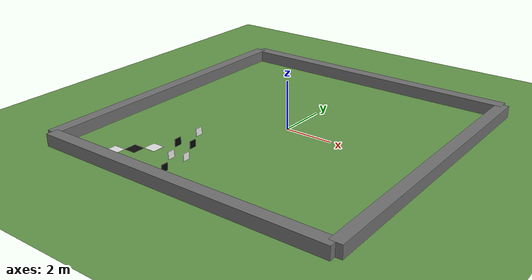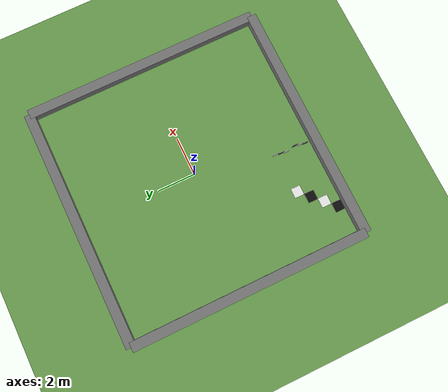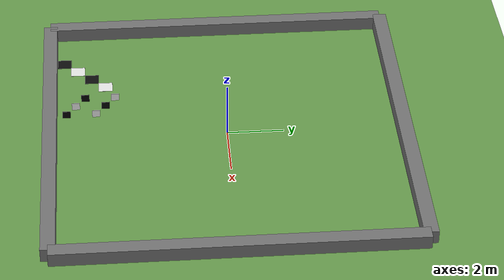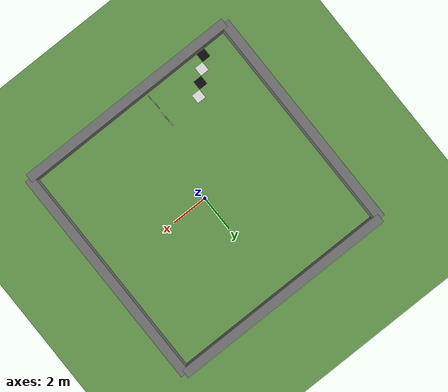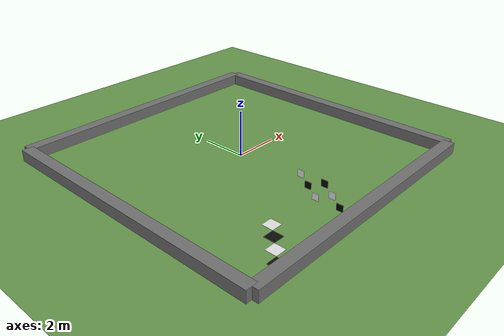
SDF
<?xml version="1.0" ?>
<sdf version="1.8">
  <world name="empty2">

    <physics name="1ms" type="ignored">
      <max_step_size>0.001</max_step_size>
      <real_time_factor>1.0</real_time_factor>
    </physics>

    <plugin filename="gz-sim-physics-system"
            name="gz::sim::systems::Physics"/>
    <plugin filename="gz-sim-user-commands-system"
            name="gz::sim::systems::UserCommands"/>
    <plugin filename="gz-sim-scene-broadcaster-system"
            name="gz::sim::systems::SceneBroadcaster"/>
    <plugin filename="gz-sim-sensors-system"
            name="gz::sim::systems::Sensors">
      <render_engine>ogre2</render_engine>
    </plugin>
    <plugin filename="gz-sim-imu-system"
            name="gz::sim::systems::Imu"/>

    <spherical_coordinates>
      <surface_model>EARTH_WGS84</surface_model>
      <latitude_deg>43.2557</latitude_deg>
      <longitude_deg>-79.8711</longitude_deg>
      <elevation>100.0</elevation>
      <heading_deg>0</heading_deg>
    </spherical_coordinates>

    <light name="amr_sweeper_sun" type="directional">
      <cast_shadows>true</cast_shadows>
      <pose>0 0 10 0 0 0</pose>
      <diffuse>1 1 1 1</diffuse>
      <specular>0.5 0.5 0.5 1</specular>
      <direction>-0.5 0.1 -0.9</direction>
    </light>

    <model name="ground_plane">
      <static>true</static>
      <link name="link">
        <collision name="collision">
          <geometry><plane><normal>0 0 1</normal><size>100 100</size></plane></geometry>
        </collision>
        <visual name="visual">
          <geometry><plane><normal>0 0 1</normal><size>100 100</size></plane></geometry>
          <material><ambient>0.4 0.6 0.3 1</ambient></material>
        </visual>
      </link>
    </model>

    <model name="vo_feature_targets">
      <static>true</static>
      <link name="pattern_link">
        <visual name="floor_dark_0">
          <pose>-4.5 -5.75 0.004 0 0 0</pose>
          <geometry><box><size>0.5 0.5 0.005</size></box></geometry>
          <material><ambient>0.05 0.05 0.05 1</ambient><diffuse>0.05 0.05 0.05 1</diffuse></material>
        </visual>
        <visual name="floor_light_0">
          <pose>-4.0 -5.25 0.004 0 0 0</pose>
          <geometry><box><size>0.5 0.5 0.005</size></box></geometry>
          <material><ambient>0.9 0.9 0.9 1</ambient><diffuse>0.9 0.9 0.9 1</diffuse></material>
        </visual>
        <visual name="floor_dark_1">
          <pose>-3.5 -4.75 0.004 0 0 0</pose>
          <geometry><box><size>0.5 0.5 0.005</size></box></geometry>
          <material><ambient>0.05 0.05 0.05 1</ambient><diffuse>0.05 0.05 0.05 1</diffuse></material>
        </visual>
        <visual name="floor_light_1">
          <pose>-3.0 -4.25 0.004 0 0 0</pose>
          <geometry><box><size>0.5 0.5 0.005</size></box></geometry>
          <material><ambient>0.9 0.9 0.9 1</ambient><diffuse>0.9 0.9 0.9 1</diffuse></material>
        </visual>
        <visual name="panel_00">
          <pose>-1.0 -5.65 0.35 0 0 0</pose>
          <geometry><box><size>0.02 0.28 0.28</size></box></geometry>
          <material><ambient>0.02 0.02 0.02 1</ambient><diffuse>0.02 0.02 0.02 1</diffuse></material>
        </visual>
        <visual name="panel_01">
          <pose>-1.0 -5.30 0.70 0 0 0</pose>
          <geometry><box><size>0.02 0.28 0.28</size></box></geometry>
          <material><ambient>0.95 0.95 0.95 1</ambient><diffuse>0.95 0.95 0.95 1</diffuse></material>
        </visual>
        <visual name="panel_02">
          <pose>-1.0 -4.95 1.05 0 0 0</pose>
          <geometry><box><size>0.02 0.28 0.28</size></box></geometry>
          <material><ambient>0.02 0.02 0.02 1</ambient><diffuse>0.02 0.02 0.02 1</diffuse></material>
        </visual>
        <visual name="panel_03">
          <pose>-1.0 -4.60 0.35 0 0 0</pose>
          <geometry><box><size>0.02 0.28 0.28</size></box></geometry>
          <material><ambient>0.95 0.95 0.95 1</ambient><diffuse>0.95 0.95 0.95 1</diffuse></material>
        </visual>
        <visual name="panel_04">
          <pose>-1.0 -4.25 0.70 0 0 0</pose>
          <geometry><box><size>0.02 0.28 0.28</size></box></geometry>
          <material><ambient>0.02 0.02 0.02 1</ambient><diffuse>0.02 0.02 0.02 1</diffuse></material>
        </visual>
        <visual name="panel_05">
          <pose>-1.0 -3.90 1.05 0 0 0</pose>
          <geometry><box><size>0.02 0.28 0.28</size></box></geometry>
          <material><ambient>0.95 0.95 0.95 1</ambient><diffuse>0.95 0.95 0.95 1</diffuse></material>
        </visual>
      </link>
    </model>

    <model name="perimeter_walls">
      <static>true</static>
      <link name="link">
        <collision name="north_wall">
          <pose>0 6.25 0.25 0 0 0</pose>
          <geometry><box><size>12.5 0.5 0.5</size></box></geometry>
        </collision>
        <visual name="north_wall_visual">
          <pose>0 6.25 0.25 0 0 0</pose>
          <geometry><box><size>12.5 0.5 0.5</size></box></geometry>
          <material><ambient>0.45 0.45 0.45 1</ambient><diffuse>0.45 0.45 0.45 1</diffuse></material>
        </visual>
        <collision name="south_wall">
          <pose>0 -6.25 0.25 0 0 0</pose>
          <geometry><box><size>12.5 0.5 0.5</size></box></geometry>
        </collision>
        <visual name="south_wall_visual">
          <pose>0 -6.25 0.25 0 0 0</pose>
          <geometry><box><size>12.5 0.5 0.5</size></box></geometry>
          <material><ambient>0.45 0.45 0.45 1</ambient><diffuse>0.45 0.45 0.45 1</diffuse></material>
        </visual>
        <collision name="east_wall">
          <pose>6.25 0 0.25 0 0 0</pose>
          <geometry><box><size>0.5 12.5 0.5</size></box></geometry>
        </collision>
        <visual name="east_wall_visual">
          <pose>6.25 0 0.25 0 0 0</pose>
          <geometry><box><size>0.5 12.5 0.5</size></box></geometry>
          <material><ambient>0.45 0.45 0.45 1</ambient><diffuse>0.45 0.45 0.45 1</diffuse></material>
        </visual>
        <collision name="west_wall">
          <pose>-6.25 0 0.25 0 0 0</pose>
          <geometry><box><size>0.5 12.5 0.5</size></box></geometry>
        </collision>
        <visual name="west_wall_visual">
          <pose>-6.25 0 0.25 0 0 0</pose>
          <geometry><box><size>0.5 12.5 0.5</size></box></geometry>
          <material><ambient>0.45 0.45 0.45 1</ambient><diffuse>0.45 0.45 0.45 1</diffuse></material>
        </visual>
      </link>
    </model>
  </world>
</sdf>
